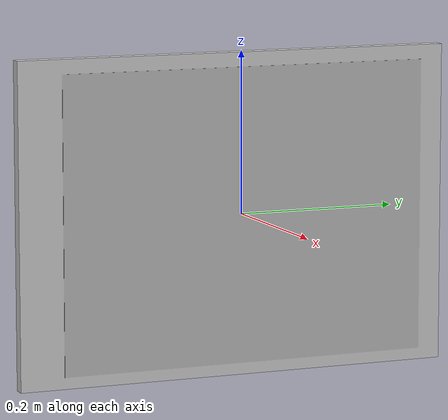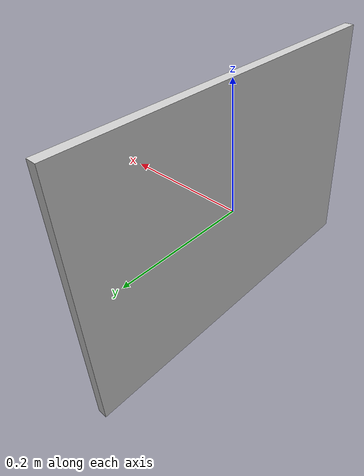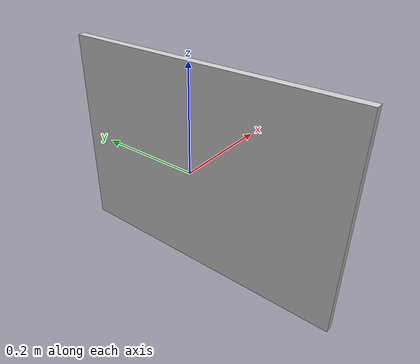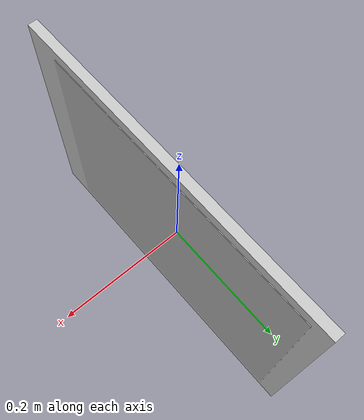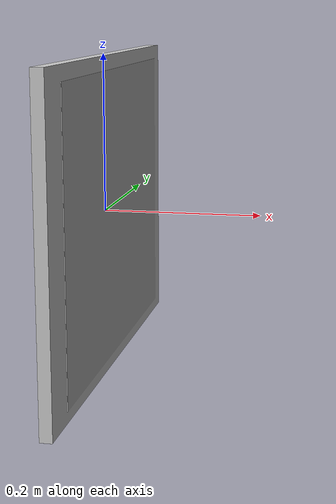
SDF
<?xml version="1.0" ?>
<sdf version="1.5">
  <model name="camcalib_pattern_grid">
    <static>true</static>
    <link name="link">
      <pose>0 0 0 0 0 0</pose>
      <collision name="collision">
        <pose>0 0 0 0 0 0</pose>
        <geometry>
          <mesh>
            <uri>file://camcalib_pattern_grid/meshes/camcalib_pattern_grid.dae</uri>
            <scale>1 1 1</scale>
          </mesh>
        </geometry>
      </collision>
      <visual name="visual">
        <geometry>
          <mesh>
            <uri>file://camcalib_pattern_grid/meshes/camcalib_pattern_grid.dae</uri>
            <scale>1 1 1</scale>
          </mesh>
        </geometry>
      </visual>
    </link>
  </model>
</sdf>
